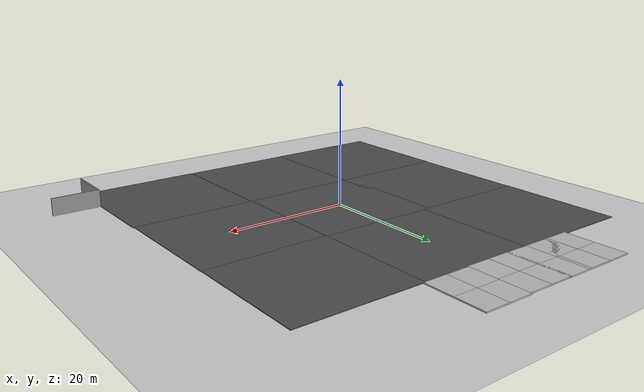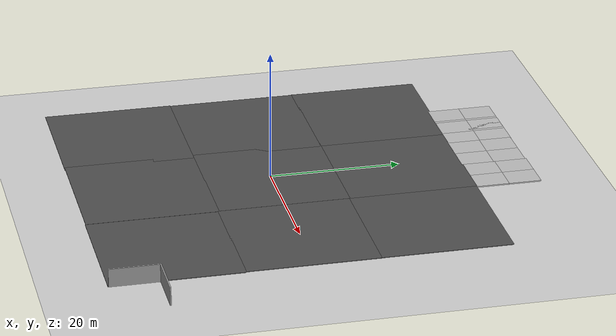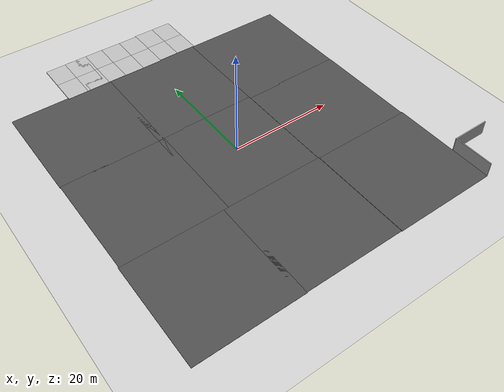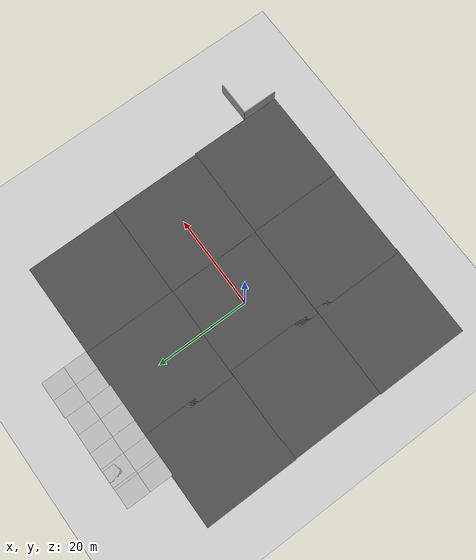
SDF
<sdf version="1.6">
 <world name="default">
  <light name="sun" type="directional">
   <pose>0 0 10 0 -0 0</pose>
   <diffuse>0.8 0.8 0.8 1</diffuse>
   <specular>0.2 0.2 0.2 1</specular>
   <attenuation>
    <range>1000</range>
    <constant>0.9</constant>
    <linear>0.01</linear>
    <quadratic>0.001</quadratic>
   </attenuation>
   <direction>-0.5 0.1 -0.9</direction>
  </light>
  <model name="ground_plane">
   <static>1</static>
   <link name="link">
    <collision name="collision">
     <geometry><plane><normal>0 0 1</normal><size>100 100</size></plane></geometry>
     <surface>
      <contact><collide_bitmask>65535</collide_bitmask></contact>
      <friction><ode><mu>100</mu><mu2>50</mu2></ode></friction>
     </surface>
    </collision>
    <visual name="visual">
     <cast_shadows>0</cast_shadows>
     <geometry><plane><normal>0 0 1</normal><size>100 100</size></plane></geometry>
     <material>
      <script><uri>file://media/materials/scripts/gazebo.material</uri><name>Gazebo/Grey</name></script>
     </material>
    </visual>
   </link>
  </model>
  <gravity>0 0 -9.8</gravity>
  <magnetic_field>6e-06 2.3e-05 -4.2e-05</magnetic_field>
  <atmosphere type="adiabatic"/>
  <physics name="default_physics" default="0" type="ode">
   <max_step_size>0.001</max_step_size>
   <real_time_factor>1</real_time_factor>
   <real_time_update_rate>1000</real_time_update_rate>
  </physics>
  <scene><ambient>0.4 0.4 0.4 1</ambient><background>0.7 0.7 0.7 1</background><shadows>1</shadows></scene>
  <audio><device>default</device></audio>
  <spherical_coordinates>
   <surface_model>EARTH_WGS84</surface_model>
   <latitude_deg>0</latitude_deg>
   <longitude_deg>0</longitude_deg>
   <elevation>0</elevation>
   <heading_deg>0</heading_deg>
  </spherical_coordinates>
  <model name="asphalt_plane">
   <static>1</static>
   <link name="link">
    <collision name="collision"><geometry><box><size>20 20 0.1</size></box></geometry></collision>
    <visual name="visual">
     <cast_shadows>0</cast_shadows>
     <geometry><box><size>20 20 0.1</size></box></geometry>
     <material>
      <script>
       <uri>model://asphalt_plane/materials/scripts</uri>
       <uri>model://asphalt_plane/materials/textures</uri>
       <name>vrc/asphalt</name>
      </script>
     </material>
    </visual>
   </link>
   <pose>0.047874 -0.035053 0 0 -0 0</pose>
  </model>
  <model name="asphalt_plane_0">
   <static>1</static>
   <link name="link">
    <collision name="collision"><geometry><box><size>20 20 0.1</size></box></geometry></collision>
    <visual name="visual">
     <cast_shadows>0</cast_shadows>
     <geometry><box><size>20 20 0.1</size></box></geometry>
     <material>
      <script>
       <uri>model://asphalt_plane/materials/scripts</uri>
       <uri>model://asphalt_plane/materials/textures</uri>
       <name>vrc/asphalt</name>
      </script>
     </material>
    </visual>
   </link>
   <pose>0.083029 19.7766 0 0 -0 0</pose>
  </model>
  <model name="asphalt_plane_1">
   <static>1</static>
   <link name="link">
    <collision name="collision"><geometry><box><size>20 20 0.1</size></box></geometry></collision>
    <visual name="visual">
     <cast_shadows>0</cast_shadows>
     <geometry><box><size>20 20 0.1</size></box></geometry>
     <material>
      <script>
       <uri>model://asphalt_plane/materials/scripts</uri>
       <uri>model://asphalt_plane/materials/textures</uri>
       <name>vrc/asphalt</name>
      </script>
     </material>
    </visual>
   </link>
   <pose>-18.9277 19.7038 0 0 -0 0</pose>
  </model>
  <model name="asphalt_plane_2">
   <static>1</static>
   <link name="link">
    <collision name="collision"><geometry><box><size>20 20 0.1</size></box></geometry></collision>
    <visual name="visual">
     <cast_shadows>0</cast_shadows>
     <geometry><box><size>20 20 0.1</size></box></geometry>
     <material>
      <script>
       <uri>model://asphalt_plane/materials/scripts</uri>
       <uri>model://asphalt_plane/materials/textures</uri>
       <name>vrc/asphalt</name>
      </script>
     </material>
    </visual>
   </link>
   <pose>-18.8327 -0.09765 0 0 -0 0</pose>
  </model>
  <model name="asphalt_plane_3">
   <static>1</static>
   <link name="link">
    <collision name="collision"><geometry><box><size>20 20 0.1</size></box></geometry></collision>
    <visual name="visual">
     <cast_shadows>0</cast_shadows>
     <geometry><box><size>20 20 0.1</size></box></geometry>
     <material>
      <script>
       <uri>model://asphalt_plane/materials/scripts</uri>
       <uri>model://asphalt_plane/materials/textures</uri>
       <name>vrc/asphalt</name>
      </script>
     </material>
    </visual>
   </link>
   <pose>-18.973 -20.0437 0 0 -0 0</pose>
  </model>
  <model name="asphalt_plane_4">
   <static>1</static>
   <link name="link">
    <collision name="collision"><geometry><box><size>20 20 0.1</size></box></geometry></collision>
    <visual name="visual">
     <cast_shadows>0</cast_shadows>
     <geometry><box><size>20 20 0.1</size></box></geometry>
     <material>
      <script>
       <uri>model://asphalt_plane/materials/scripts</uri>
       <uri>model://asphalt_plane/materials/textures</uri>
       <name>vrc/asphalt</name>
      </script>
     </material>
    </visual>
   </link>
   <pose>0.195644 -19.9516 0 0 -0 0</pose>
  </model>
  <model name="asphalt_plane_5">
   <static>1</static>
   <link name="link">
    <collision name="collision"><geometry><box><size>20 20 0.1</size></box></geometry></collision>
    <visual name="visual">
     <cast_shadows>0</cast_shadows>
     <geometry><box><size>20 20 0.1</size></box></geometry>
     <material>
      <script>
       <uri>model://asphalt_plane/materials/scripts</uri>
       <uri>model://asphalt_plane/materials/textures</uri>
       <name>vrc/asphalt</name>
      </script>
     </material>
    </visual>
   </link>
   <pose>20.2426 -20.0364 0 0 -0 0</pose>
  </model>
  <model name="asphalt_plane_6">
   <static>1</static>
   <link name="link">
    <collision name="collision"><geometry><box><size>20 20 0.1</size></box></geometry></collision>
    <visual name="visual">
     <cast_shadows>0</cast_shadows>
     <geometry><box><size>20 20 0.1</size></box></geometry>
     <material>
      <script>
       <uri>model://asphalt_plane/materials/scripts</uri>
       <uri>model://asphalt_plane/materials/textures</uri>
       <name>vrc/asphalt</name>
      </script>
     </material>
    </visual>
   </link>
   <pose>20.0668 -0.169326 0 0 -0 0</pose>
  </model>
  <model name="asphalt_plane_7">
   <static>1</static>
   <link name="link">
    <collision name="collision"><geometry><box><size>20 20 0.1</size></box></geometry></collision>
    <visual name="visual">
     <cast_shadows>0</cast_shadows>
     <geometry><box><size>20 20 0.1</size></box></geometry>
     <material>
      <script>
       <uri>model://asphalt_plane/materials/scripts</uri>
       <uri>model://asphalt_plane/materials/textures</uri>
       <name>vrc/asphalt</name>
      </script>
     </material>
    </visual>
   </link>
   <pose>20.019 19.5441 0 0 -0 0</pose>
  </model>
  <model name="grey_wall">
   <static>1</static>
   <link name="link">
    <pose>0 0 1.4 0 -0 0</pose>
    <collision name="collision"><geometry><box><size>7.5 0.2 2.8</size></box></geometry></collision>
    <visual name="visual">
     <cast_shadows>0</cast_shadows>
     <geometry><box><size>7.5 0.2 2.8</size></box></geometry>
     <material>
      <script>
       <uri>model://grey_wall/materials/scripts</uri>
       <uri>model://grey_wall/materials/textures</uri>
       <name>vrc/grey_wall</name>
      </script>
     </material>
    </visual>
   </link>
   <pose>33.9972 -22.4174 0 0 -0 0</pose>
  </model>
  <model name="grey_wall_clone">
   <static>1</static>
   <link name="link">
    <pose>0 0 1.4 0 -0 0</pose>
    <collision name="collision"><geometry><box><size>7.5 0.2 2.8</size></box></geometry></collision>
    <visual name="visual">
     <cast_shadows>0</cast_shadows>
     <geometry><box><size>7.5 0.2 2.8</size></box></geometry>
     <material>
      <script>
       <uri>model://grey_wall/materials/scripts</uri>
       <uri>model://grey_wall/materials/textures</uri>
       <name>vrc/grey_wall</name>
      </script>
     </material>
    </visual>
   </link>
   <pose>30.3436 -26.1936 0 0 -0 1.5708</pose>
  </model>
  <model name="mud_box">
   <static>1</static>
   <link name="link">
    <collision name="collision"><geometry><box><size>8 10 0.2</size></box></geometry></collision>
    <visual name="visual_1">
     <pose>-2 2.5 0 0 -0 0</pose>
     <cast_shadows>0</cast_shadows>
     <geometry><box><size>4 5 0.2</size></box></geometry>
     <material>
      <script>
       <uri>model://mud_box/materials/scripts</uri>
       <uri>model://mud_box/materials/textures</uri>
       <name>vrc/mud</name>
      </script>
     </material>
    </visual>
    <visual name="visual_2">
     <pose>2 2.5 0 0 -0 0</pose>
     <cast_shadows>0</cast_shadows>
     <geometry><box><size>4 5 0.2</size></box></geometry>
     <material>
      <script>
       <uri>model://mud_box/materials/scripts</uri>
       <uri>model://mud_box/materials/textures</uri>
       <name>vrc/mud</name>
      </script>
     </material>
    </visual>
    <visual name="visual_3">
     <pose>2 -2.5 0 0 -0 0</pose>
     <cast_shadows>0</cast_shadows>
     <geometry><box><size>4 5 0.2</size></box></geometry>
     <material>
      <script>
       <uri>model://mud_box/materials/scripts</uri>
       <uri>model://mud_box/materials/textures</uri>
       <name>vrc/mud</name>
      </script>
     </material>
    </visual>
    <visual name="visual_4">
     <pose>-2 -2.5 0 0 -0 0</pose>
     <cast_shadows>0</cast_shadows>
     <geometry><box><size>4 5 0.2</size></box></geometry>
     <material>
      <script>
       <uri>model://mud_box/materials/scripts</uri>
       <uri>model://mud_box/materials/textures</uri>
       <name>vrc/mud</name>
      </script>
     </material>
    </visual>
   </link>
   <pose>-13.6958 34.4034 0 0 -0 0</pose>
  </model>
  <model name="mud_box_0">
   <static>1</static>
   <link name="link">
    <collision name="collision"><geometry><box><size>8 10 0.2</size></box></geometry></collision>
    <visual name="visual_1">
     <pose>-2 2.5 0 0 -0 0</pose>
     <cast_shadows>0</cast_shadows>
     <geometry><box><size>4 5 0.2</size></box></geometry>
     <material>
      <script>
       <uri>model://mud_box/materials/scripts</uri>
       <uri>model://mud_box/materials/textures</uri>
       <name>vrc/mud</name>
      </script>
     </material>
    </visual>
    <visual name="visual_2">
     <pose>2 2.5 0 0 -0 0</pose>
     <cast_shadows>0</cast_shadows>
     <geometry><box><size>4 5 0.2</size></box></geometry>
     <material>
      <script>
       <uri>model://mud_box/materials/scripts</uri>
       <uri>model://mud_box/materials/textures</uri>
       <name>vrc/mud</name>
      </script>
     </material>
    </visual>
    <visual name="visual_3">
     <pose>2 -2.5 0 0 -0 0</pose>
     <cast_shadows>0</cast_shadows>
     <geometry><box><size>4 5 0.2</size></box></geometry>
     <material>
      <script>
       <uri>model://mud_box/materials/scripts</uri>
       <uri>model://mud_box/materials/textures</uri>
       <name>vrc/mud</name>
      </script>
     </material>
    </visual>
    <visual name="visual_4">
     <pose>-2 -2.5 0 0 -0 0</pose>
     <cast_shadows>0</cast_shadows>
     <geometry><box><size>4 5 0.2</size></box></geometry>
     <material>
      <script>
       <uri>model://mud_box/materials/scripts</uri>
       <uri>model://mud_box/materials/textures</uri>
       <name>vrc/mud</name>
      </script>
     </material>
    </visual>
   </link>
   <pose>6.3721 34.5593 0 0 -0 0</pose>
  </model>
  <model name="mud_box_1">
   <static>1</static>
   <link name="link">
    <collision name="collision"><geometry><box><size>8 10 0.2</size></box></geometry></collision>
    <visual name="visual_1">
     <pose>-2 2.5 0 0 -0 0</pose>
     <cast_shadows>0</cast_shadows>
     <geometry><box><size>4 5 0.2</size></box></geometry>
     <material>
      <script>
       <uri>model://mud_box/materials/scripts</uri>
       <uri>model://mud_box/materials/textures</uri>
       <name>vrc/mud</name>
      </script>
     </material>
    </visual>
    <visual name="visual_2">
     <pose>2 2.5 0 0 -0 0</pose>
     <cast_shadows>0</cast_shadows>
     <geometry><box><size>4 5 0.2</size></box></geometry>
     <material>
      <script>
       <uri>model://mud_box/materials/scripts</uri>
       <uri>model://mud_box/materials/textures</uri>
       <name>vrc/mud</name>
      </script>
     </material>
    </visual>
    <visual name="visual_3">
     <pose>2 -2.5 0 0 -0 0</pose>
     <cast_shadows>0</cast_shadows>
     <geometry><box><size>4 5 0.2</size></box></geometry>
     <material>
      <script>
       <uri>model://mud_box/materials/scripts</uri>
       <uri>model://mud_box/materials/textures</uri>
       <name>vrc/mud</name>
      </script>
     </material>
    </visual>
    <visual name="visual_4">
     <pose>-2 -2.5 0 0 -0 0</pose>
     <cast_shadows>0</cast_shadows>
     <geometry><box><size>4 5 0.2</size></box></geometry>
     <material>
      <script>
       <uri>model://mud_box/materials/scripts</uri>
       <uri>model://mud_box/materials/textures</uri>
       <name>vrc/mud</name>
      </script>
     </material>
    </visual>
   </link>
   <pose>-1.5846 34.3793 0 0 -0 0</pose>
  </model>
  <model name="mud_box_2">
   <static>1</static>
   <link name="link">
    <collision name="collision"><geometry><box><size>8 10 0.2</size></box></geometry></collision>
    <visual name="visual_1">
     <pose>-2 2.5 0 0 -0 0</pose>
     <cast_shadows>0</cast_shadows>
     <geometry><box><size>4 5 0.2</size></box></geometry>
     <material>
      <script>
       <uri>model://mud_box/materials/scripts</uri>
       <uri>model://mud_box/materials/textures</uri>
       <name>vrc/mud</name>
      </script>
     </material>
    </visual>
    <visual name="visual_2">
     <pose>2 2.5 0 0 -0 0</pose>
     <cast_shadows>0</cast_shadows>
     <geometry><box><size>4 5 0.2</size></box></geometry>
     <material>
      <script>
       <uri>model://mud_box/materials/scripts</uri>
       <uri>model://mud_box/materials/textures</uri>
       <name>vrc/mud</name>
      </script>
     </material>
    </visual>
    <visual name="visual_3">
     <pose>2 -2.5 0 0 -0 0</pose>
     <cast_shadows>0</cast_shadows>
     <geometry><box><size>4 5 0.2</size></box></geometry>
     <material>
      <script>
       <uri>model://mud_box/materials/scripts</uri>
       <uri>model://mud_box/materials/textures</uri>
       <name>vrc/mud</name>
      </script>
     </material>
    </visual>
    <visual name="visual_4">
     <pose>-2 -2.5 0 0 -0 0</pose>
     <cast_shadows>0</cast_shadows>
     <geometry><box><size>4 5 0.2</size></box></geometry>
     <material>
      <script>
       <uri>model://mud_box/materials/scripts</uri>
       <uri>model://mud_box/materials/textures</uri>
       <name>vrc/mud</name>
      </script>
     </material>
    </visual>
   </link>
   <pose>-9.15911 34.4275 0 0 -0 0</pose>
  </model>
 </world>
</sdf>
